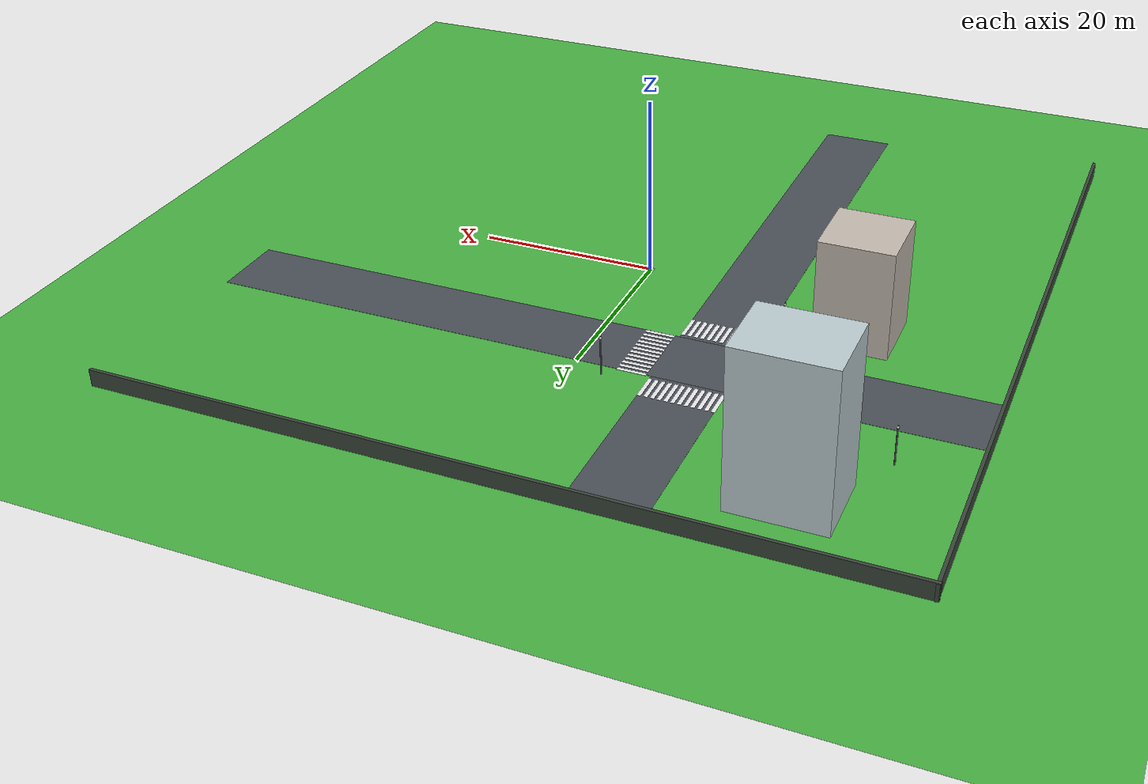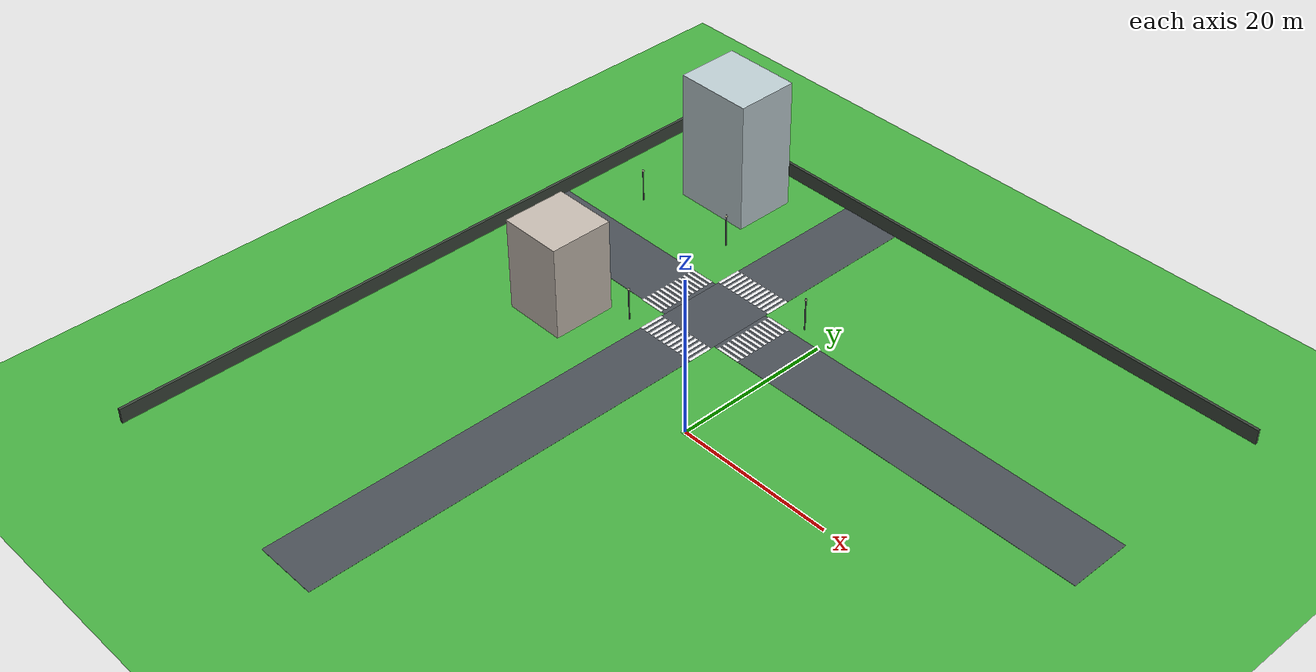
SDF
<sdf version="1.10">
 <world name="city_second">
  <model name="ground_plane">
   <static>true</static>
   <link name="link">
    <collision name="collision">
     <geometry><plane><normal>0 0 1</normal><size>300 300</size></plane></geometry>
    </collision>
    <visual name="visual">
     <geometry><plane><normal>0 0 1</normal><size>300 300</size></plane></geometry>
     <material>
      <ambient>0.280000001 0.689999998 0.25999999 1</ambient>
      <diffuse>0.280000001 0.689999998 0.25999999 1</diffuse>
      <specular>0.0299999993 0.0299999993 0.0299999993 1</specular>
     </material>
    </visual>
    <inertial>
     <mass>1</mass>
     <inertia><ixx>1</ixx><ixy>0</ixy><ixz>0</ixz><iyy>1</iyy><iyz>0</iyz><izz>1</izz></inertia>
    </inertial>
   </link>
  </model>
  <model name="road_h_2">
   <static>true</static>
   <pose>0 16 0.01 0 0 0</pose>
   <link name="link">
    <collision name="collision"><geometry><box><size>84 8 0.02</size></box></geometry></collision>
    <visual name="visual">
     <geometry><box><size>84 8 0.02</size></box></geometry>
     <material>
      <ambient>0.289999992 0.310000002 0.340000004 1</ambient>
      <diffuse>0.289999992 0.310000002 0.340000004 1</diffuse>
      <specular>0.0299999993 0.0299999993 0.0299999993 1</specular>
     </material>
    </visual>
    <inertial>
     <mass>1</mass>
     <inertia><ixx>1</ixx><ixy>0</ixy><ixz>0</ixz><iyy>1</iyy><iyz>0</iyz><izz>1</izz></inertia>
    </inertial>
   </link>
  </model>
  <model name="house_2_1">
   <static>true</static>
   <pose>-25.100000000000001 4.3999999999999995 6 0 0 0</pose>
   <link name="link">
    <collision name="collision"><geometry><box><size>8 8 12</size></box></geometry></collision>
    <visual name="visual">
     <geometry><box><size>8 8 12</size></box></geometry>
     <material>
      <ambient>0.769999981 0.730000019 0.689999998 1</ambient>
      <diffuse>0.769999981 0.730000019 0.689999998 1</diffuse>
      <specular>0.0299999993 0.0299999993 0.0299999993 1</specular>
     </material>
    </visual>
    <inertial>
     <mass>1</mass>
     <inertia><ixx>1</ixx><ixy>0</ixy><ixz>0</ixz><iyy>1</iyy><iyz>0</iyz><izz>1</izz></inertia>
    </inertial>
   </link>
  </model>
  <model name="robot_spawn_sidewalk_hint">
   <static>true</static>
   <pose>0 0 0.021000000000000001 0 0 0</pose>
   <link name="link">
    <visual name="visual">
     <geometry><box><size>0.80000000000000004 0.80000000000000004 0.0050000000000000001</size></box></geometry>
     <material>
      <ambient>0.550000012 0.860000014 0.569999993 0.649999976</ambient>
      <diffuse>0.550000012 0.860000014 0.569999993 0.649999976</diffuse>
      <specular>0 0 0 1</specular>
     </material>
     <transparency>0.34999999999999998</transparency>
    </visual>
    <inertial>
     <mass>1</mass>
     <inertia><ixx>1</ixx><ixy>0</ixy><ixz>0</ixz><iyy>1</iyy><iyz>0</iyz><izz>1</izz></inertia>
    </inertial>
   </link>
  </model>
  <model name="fence_north">
   <static>true</static>
   <pose>0 42 0.94999999999999996 0 0 0</pose>
   <link name="link">
    <collision name="collision">
     <geometry><box><size>84.5 0.34999999999999998 1.8999999999999999</size></box></geometry>
    </collision>
    <visual name="visual">
     <geometry><box><size>84.5 0.34999999999999998 1.8999999999999999</size></box></geometry>
     <material>
      <ambient>0.230000004 0.270000011 0.230000004 1</ambient>
      <diffuse>0.230000004 0.270000011 0.230000004 1</diffuse>
      <specular>0.0299999993 0.0299999993 0.0299999993 1</specular>
     </material>
    </visual>
    <inertial>
     <mass>1</mass>
     <inertia><ixx>1</ixx><ixy>0</ixy><ixz>0</ixz><iyy>1</iyy><iyz>0</iyz><izz>1</izz></inertia>
    </inertial>
   </link>
  </model>
  <model name="fence_west">
   <static>true</static>
   <pose>-42 0 0.94999999999999996 0 0 0</pose>
   <link name="link">
    <collision name="collision">
     <geometry><box><size>0.34999999999999998 84.5 1.8999999999999999</size></box></geometry>
    </collision>
    <visual name="visual">
     <geometry><box><size>0.34999999999999998 84.5 1.8999999999999999</size></box></geometry>
     <material>
      <ambient>0.230000004 0.270000011 0.230000004 1</ambient>
      <diffuse>0.230000004 0.270000011 0.230000004 1</diffuse>
      <specular>0.0299999993 0.0299999993 0.0299999993 1</specular>
     </material>
    </visual>
    <inertial>
     <mass>1</mass>
     <inertia><ixx>1</ixx><ixy>0</ixy><ixz>0</ixz><iyy>1</iyy><iyz>0</iyz><izz>1</izz></inertia>
    </inertial>
   </link>
  </model>
  <model name="road_v_2_1">
   <static>true</static>
   <pose>-12.095598502569292 -0.16979157245031473 0.0099999997764825821 0 0 0</pose>
   <link name="link">
    <collision name="collision"><geometry><box><size>8 84 0.02</size></box></geometry></collision>
    <visual name="visual">
     <geometry><box><size>8 84 0.02</size></box></geometry>
     <material>
      <ambient>0.289999992 0.310000002 0.340000004 1</ambient>
      <diffuse>0.289999992 0.310000002 0.340000004 1</diffuse>
      <specular>0.0299999993 0.0299999993 0.0299999993 1</specular>
     </material>
    </visual>
    <inertial>
     <mass>1</mass>
     <inertia><ixx>1</ixx><ixy>0</ixy><ixz>0</ixz><iyy>1</iyy><iyz>0</iyz><izz>1</izz></inertia>
    </inertial>
   </link>
  </model>
  <model name="lamp_1_2">
   <static>true</static>
   <pose>-18.167518288766846 8.4933640451042152 2.2000000476837158 0 0 0</pose>
   <link name="link">
    <collision name="collision">
     <geometry>
      <cylinder><radius>0.080000000000000002</radius><length>4.4000000000000004</length></cylinder>
     </geometry>
    </collision>
    <visual name="pole">
     <geometry>
      <cylinder><radius>0.080000000000000002</radius><length>4.4000000000000004</length></cylinder>
     </geometry>
     <material>
      <ambient>0.349999994 0.360000014 0.379999995 1</ambient>
      <diffuse>0.349999994 0.360000014 0.379999995 1</diffuse>
      <specular>0.0299999993 0.0299999993 0.0299999993 1</specular>
     </material>
    </visual>
    <visual name="lamp_head">
     <pose>0 0 2 0 0 0</pose>
     <geometry><sphere><radius>0.14000000000000001</radius></sphere></geometry>
     <material>
      <ambient>0.959999979 0.939999998 0.779999971 1</ambient>
      <diffuse>0.959999979 0.939999998 0.779999971 1</diffuse>
      <specular>0.0299999993 0.0299999993 0.0299999993 1</specular>
     </material>
    </visual>
    <inertial>
     <mass>1</mass>
     <inertia><ixx>1</ixx><ixy>0</ixy><ixz>0</ixz><iyy>1</iyy><iyz>0</iyz><izz>1</izz></inertia>
    </inertial>
   </link>
  </model>
  <model name="house_3_1_1">
   <static>true</static>
   <pose>-26.744751557689504 33.608565857732309 8.5 0 0 0</pose>
   <link name="link">
    <collision name="collision"><geometry><box><size>10 8 17</size></box></geometry></collision>
    <visual name="visual">
     <geometry><box><size>10 8 17</size></box></geometry>
     <material>
      <ambient>0.74000001 0.800000012 0.819999993 1</ambient>
      <diffuse>0.74000001 0.800000012 0.819999993 1</diffuse>
      <specular>0.0299999993 0.0299999993 0.0299999993 1</specular>
     </material>
    </visual>
    <inertial>
     <mass>1</mass>
     <inertia><ixx>1</ixx><ixy>0</ixy><ixz>0</ixz><iyy>1</iyy><iyz>0</iyz><izz>1</izz></inertia>
    </inertial>
   </link>
  </model>
  <model name="crosswalk_v_2_1_east_5_1">
   <static>true</static>
   <pose>-18.222129930338912 15.970349525965688 0.017000000923871994 0 0 0</pose>
   <link name="stripe_1">
    <collision name="collision">
     <geometry><box><size>3.2000000000000002 0.41999999999999998 0.01</size></box></geometry>
    </collision>
    <visual name="visual">
     <geometry><box><size>3.2000000000000002 0.41999999999999998 0.01</size></box></geometry>
     <material>
      <ambient>0.920000017 0.920000017 0.930000007 1</ambient>
      <diffuse>0.920000017 0.920000017 0.930000007 1</diffuse>
      <specular>0.0299999993 0.0299999993 0.0299999993 1</specular>
     </material>
    </visual>
    <pose>0 -3.8500000000000001 0 0 0 0</pose>
    <inertial>
     <mass>1</mass>
     <inertia><ixx>1</ixx><ixy>0</ixy><ixz>0</ixz><iyy>1</iyy><iyz>0</iyz><izz>1</izz></inertia>
    </inertial>
   </link>
   <link name="stripe_2">
    <collision name="collision">
     <geometry><box><size>3.2000000000000002 0.41999999999999998 0.01</size></box></geometry>
    </collision>
    <visual name="visual">
     <geometry><box><size>3.2000000000000002 0.41999999999999998 0.01</size></box></geometry>
     <material>
      <ambient>0.920000017 0.920000017 0.930000007 1</ambient>
      <diffuse>0.920000017 0.920000017 0.930000007 1</diffuse>
      <specular>0.0299999993 0.0299999993 0.0299999993 1</specular>
     </material>
    </visual>
    <pose>0 -3.1500000000000004 0 0 0 0</pose>
    <inertial>
     <mass>1</mass>
     <inertia><ixx>1</ixx><ixy>0</ixy><ixz>0</ixz><iyy>1</iyy><iyz>0</iyz><izz>1</izz></inertia>
    </inertial>
   </link>
   <link name="stripe_3">
    <collision name="collision">
     <geometry><box><size>3.2000000000000002 0.41999999999999998 0.01</size></box></geometry>
    </collision>
    <visual name="visual">
     <geometry><box><size>3.2000000000000002 0.41999999999999998 0.01</size></box></geometry>
     <material>
      <ambient>0.920000017 0.920000017 0.930000007 1</ambient>
      <diffuse>0.920000017 0.920000017 0.930000007 1</diffuse>
      <specular>0.0299999993 0.0299999993 0.0299999993 1</specular>
     </material>
    </visual>
    <pose>0 -2.4499999999999993 0 0 0 0</pose>
    <inertial>
     <mass>1</mass>
     <inertia><ixx>1</ixx><ixy>0</ixy><ixz>0</ixz><iyy>1</iyy><iyz>0</iyz><izz>1</izz></inertia>
    </inertial>
   </link>
   <link name="stripe_4">
    <collision name="collision">
     <geometry><box><size>3.2000000000000002 0.41999999999999998 0.01</size></box></geometry>
    </collision>
    <visual name="visual">
     <geometry><box><size>3.2000000000000002 0.41999999999999998 0.01</size></box></geometry>
     <material>
      <ambient>0.920000017 0.920000017 0.930000007 1</ambient>
      <diffuse>0.920000017 0.920000017 0.930000007 1</diffuse>
      <specular>0.0299999993 0.0299999993 0.0299999993 1</specular>
     </material>
    </visual>
    <pose>0 -1.75 0 0 0 0</pose>
    <inertial>
     <mass>1</mass>
     <inertia><ixx>1</ixx><ixy>0</ixy><ixz>0</ixz><iyy>1</iyy><iyz>0</iyz><izz>1</izz></inertia>
    </inertial>
   </link>
   <link name="stripe_5">
    <collision name="collision">
     <geometry><box><size>3.2000000000000002 0.41999999999999998 0.01</size></box></geometry>
    </collision>
    <visual name="visual">
     <geometry><box><size>3.2000000000000002 0.41999999999999998 0.01</size></box></geometry>
     <material>
      <ambient>0.920000017 0.920000017 0.930000007 1</ambient>
      <diffuse>0.920000017 0.920000017 0.930000007 1</diffuse>
      <specular>0.0299999993 0.0299999993 0.0299999993 1</specular>
     </material>
    </visual>
    <pose>0 -1.0500000000000007 0 0 0 0</pose>
    <inertial>
     <mass>1</mass>
     <inertia><ixx>1</ixx><ixy>0</ixy><ixz>0</ixz><iyy>1</iyy><iyz>0</iyz><izz>1</izz></inertia>
    </inertial>
   </link>
   <link name="stripe_6">
    <collision name="collision">
     <geometry><box><size>3.2000000000000002 0.41999999999999998 0.01</size></box></geometry>
    </collision>
    <visual name="visual">
     <geometry><box><size>3.2000000000000002 0.41999999999999998 0.01</size></box></geometry>
     <material>
      <ambient>0.920000017 0.920000017 0.930000007 1</ambient>
      <diffuse>0.920000017 0.920000017 0.930000007 1</diffuse>
      <specular>0.0299999993 0.0299999993 0.0299999993 1</specular>
     </material>
    </visual>
    <pose>0 -0.34999999999999964 0 0 0 0</pose>
    <inertial>
     <mass>1</mass>
     <inertia><ixx>1</ixx><ixy>0</ixy><ixz>0</ixz><iyy>1</iyy><iyz>0</iyz><izz>1</izz></inertia>
    </inertial>
   </link>
   <link name="stripe_7">
    <collision name="collision">
     <geometry><box><size>3.2000000000000002 0.41999999999999998 0.01</size></box></geometry>
    </collision>
    <visual name="visual">
     <geometry><box><size>3.2000000000000002 0.41999999999999998 0.01</size></box></geometry>
     <material>
      <ambient>0.920000017 0.920000017 0.930000007 1</ambient>
      <diffuse>0.920000017 0.920000017 0.930000007 1</diffuse>
      <specular>0.0299999993 0.0299999993 0.0299999993 1</specular>
     </material>
    </visual>
    <pose>0 0.35000000000000142 0 0 0 0</pose>
    <inertial>
     <mass>1</mass>
     <inertia><ixx>1</ixx><ixy>0</ixy><ixz>0</ixz><iyy>1</iyy><iyz>0</iyz><izz>1</izz></inertia>
    </inertial>
   </link>
   <link name="stripe_8">
    <collision name="collision">
     <geometry><box><size>3.2000000000000002 0.41999999999999998 0.01</size></box></geometry>
    </collision>
    <visual name="visual">
     <geometry><box><size>3.2000000000000002 0.41999999999999998 0.01</size></box></geometry>
     <material>
      <ambient>0.920000017 0.920000017 0.930000007 1</ambient>
      <diffuse>0.920000017 0.920000017 0.930000007 1</diffuse>
      <specular>0.0299999993 0.0299999993 0.0299999993 1</specular>
     </material>
    </visual>
    <pose>0 1.0500000000000007 0 0 0 0</pose>
    <inertial>
     <mass>1</mass>
     <inertia><ixx>1</ixx><ixy>0</ixy><ixz>0</ixz><iyy>1</iyy><iyz>0</iyz><izz>1</izz></inertia>
    </inertial>
   </link>
   <link name="stripe_9">
    <collision name="collision">
     <geometry><box><size>3.2000000000000002 0.41999999999999998 0.01</size></box></geometry>
    </collision>
    <visual name="visual">
     <geometry><box><size>3.2000000000000002 0.41999999999999998 0.01</size></box></geometry>
     <material>
      <ambient>0.920000017 0.920000017 0.930000007 1</ambient>
      <diffuse>0.920000017 0.920000017 0.930000007 1</diffuse>
      <specular>0.0299999993 0.0299999993 0.0299999993 1</specular>
     </material>
    </visual>
    <pose>0 1.75 0 0 0 0</pose>
    <inertial>
     <mass>1</mass>
     <inertia><ixx>1</ixx><ixy>0</ixy><ixz>0</ixz><iyy>1</iyy><iyz>0</iyz><izz>1</izz></inertia>
    </inertial>
   </link>
   <link name="stripe_10">
    <collision name="collision">
     <geometry><box><size>3.2000000000000002 0.41999999999999998 0.01</size></box></geometry>
    </collision>
    <visual name="visual">
     <geometry><box><size>3.2000000000000002 0.41999999999999998 0.01</size></box></geometry>
     <material>
      <ambient>0.920000017 0.920000017 0.930000007 1</ambient>
      <diffuse>0.920000017 0.920000017 0.930000007 1</diffuse>
      <specular>0.0299999993 0.0299999993 0.0299999993 1</specular>
     </material>
    </visual>
    <pose>0 2.4499999999999993 0 0 0 0</pose>
    <inertial>
     <mass>1</mass>
     <inertia><ixx>1</ixx><ixy>0</ixy><ixz>0</ixz><iyy>1</iyy><iyz>0</iyz><izz>1</izz></inertia>
    </inertial>
   </link>
   <link name="stripe_11">
    <collision name="collision">
     <geometry><box><size>3.2000000000000002 0.41999999999999998 0.01</size></box></geometry>
    </collision>
    <visual name="visual">
     <geometry><box><size>3.2000000000000002 0.41999999999999998 0.01</size></box></geometry>
     <material>
      <ambient>0.920000017 0.920000017 0.930000007 1</ambient>
      <diffuse>0.920000017 0.920000017 0.930000007 1</diffuse>
      <specular>0.0299999993 0.0299999993 0.0299999993 1</specular>
     </material>
    </visual>
    <pose>0 3.1499999999999986 0 0 0 0</pose>
    <inertial>
     <mass>1</mass>
     <inertia><ixx>1</ixx><ixy>0</ixy><ixz>0</ixz><iyy>1</iyy><iyz>0</iyz><izz>1</izz></inertia>
    </inertial>
   </link>
   <link name="stripe_12">
    <collision name="collision">
     <geometry><box><size>3.2000000000000002 0.41999999999999998 0.01</size></box></geometry>
    </collision>
    <visual name="visual">
     <geometry><box><size>3.2000000000000002 0.41999999999999998 0.01</size></box></geometry>
     <material>
      <ambient>0.920000017 0.920000017 0.930000007 1</ambient>
      <diffuse>0.920000017 0.920000017 0.930000007 1</diffuse>
      <specular>0.0299999993 0.0299999993 0.0299999993 1</specular>
     </material>
    </visual>
    <pose>0 3.8500000000000014 0 0 0 0</pose>
    <inertial>
     <mass>1</mass>
     <inertia><ixx>1</ixx><ixy>0</ixy><ixz>0</ixz><iyy>1</iyy><iyz>0</iyz><izz>1</izz></inertia>
    </inertial>
   </link>
  </model>
  <model name="crosswalk_v_2_1_east_5_2">
   <static>true</static>
   <pose>-6.0116002448655337 16.07211418495984 0.017000000923871994 0 0 0</pose>
   <link name="stripe_1">
    <collision name="collision">
     <geometry><box><size>3.2000000000000002 0.41999999999999998 0.01</size></box></geometry>
    </collision>
    <visual name="visual">
     <geometry><box><size>3.2000000000000002 0.41999999999999998 0.01</size></box></geometry>
     <material>
      <ambient>0.920000017 0.920000017 0.930000007 1</ambient>
      <diffuse>0.920000017 0.920000017 0.930000007 1</diffuse>
      <specular>0.0299999993 0.0299999993 0.0299999993 1</specular>
     </material>
    </visual>
    <pose>0 -3.8500000000000001 0 0 0 0</pose>
    <inertial>
     <mass>1</mass>
     <inertia><ixx>1</ixx><ixy>0</ixy><ixz>0</ixz><iyy>1</iyy><iyz>0</iyz><izz>1</izz></inertia>
    </inertial>
   </link>
   <link name="stripe_2">
    <collision name="collision">
     <geometry><box><size>3.2000000000000002 0.41999999999999998 0.01</size></box></geometry>
    </collision>
    <visual name="visual">
     <geometry><box><size>3.2000000000000002 0.41999999999999998 0.01</size></box></geometry>
     <material>
      <ambient>0.920000017 0.920000017 0.930000007 1</ambient>
      <diffuse>0.920000017 0.920000017 0.930000007 1</diffuse>
      <specular>0.0299999993 0.0299999993 0.0299999993 1</specular>
     </material>
    </visual>
    <pose>0 -3.1500000000000004 0 0 0 0</pose>
    <inertial>
     <mass>1</mass>
     <inertia><ixx>1</ixx><ixy>0</ixy><ixz>0</ixz><iyy>1</iyy><iyz>0</iyz><izz>1</izz></inertia>
    </inertial>
   </link>
   <link name="stripe_3">
    <collision name="collision">
     <geometry><box><size>3.2000000000000002 0.41999999999999998 0.01</size></box></geometry>
    </collision>
    <visual name="visual">
     <geometry><box><size>3.2000000000000002 0.41999999999999998 0.01</size></box></geometry>
     <material>
      <ambient>0.920000017 0.920000017 0.930000007 1</ambient>
      <diffuse>0.920000017 0.920000017 0.930000007 1</diffuse>
      <specular>0.0299999993 0.0299999993 0.0299999993 1</specular>
     </material>
    </visual>
    <pose>0 -2.4499999999999993 0 0 0 0</pose>
    <inertial>
     <mass>1</mass>
     <inertia><ixx>1</ixx><ixy>0</ixy><ixz>0</ixz><iyy>1</iyy><iyz>0</iyz><izz>1</izz></inertia>
    </inertial>
   </link>
   <link name="stripe_4">
    <collision name="collision">
     <geometry><box><size>3.2000000000000002 0.41999999999999998 0.01</size></box></geometry>
    </collision>
    <visual name="visual">
     <geometry><box><size>3.2000000000000002 0.41999999999999998 0.01</size></box></geometry>
     <material>
      <ambient>0.920000017 0.920000017 0.930000007 1</ambient>
      <diffuse>0.920000017 0.920000017 0.930000007 1</diffuse>
      <specular>0.0299999993 0.0299999993 0.0299999993 1</specular>
     </material>
    </visual>
    <pose>0 -1.75 0 0 0 0</pose>
    <inertial>
     <mass>1</mass>
     <inertia><ixx>1</ixx><ixy>0</ixy><ixz>0</ixz><iyy>1</iyy><iyz>0</iyz><izz>1</izz></inertia>
    </inertial>
   </link>
   <link name="stripe_5">
    <collision name="collision">
     <geometry><box><size>3.2000000000000002 0.41999999999999998 0.01</size></box></geometry>
    </collision>
    <visual name="visual">
     <geometry><box><size>3.2000000000000002 0.41999999999999998 0.01</size></box></geometry>
     <material>
      <ambient>0.920000017 0.920000017 0.930000007 1</ambient>
      <diffuse>0.920000017 0.920000017 0.930000007 1</diffuse>
      <specular>0.0299999993 0.0299999993 0.0299999993 1</specular>
     </material>
    </visual>
    <pose>0 -1.0500000000000007 0 0 0 0</pose>
    <inertial>
     <mass>1</mass>
     <inertia><ixx>1</ixx><ixy>0</ixy><ixz>0</ixz><iyy>1</iyy><iyz>0</iyz><izz>1</izz></inertia>
    </inertial>
   </link>
   <link name="stripe_6">
    <collision name="collision">
     <geometry><box><size>3.2000000000000002 0.41999999999999998 0.01</size></box></geometry>
    </collision>
    <visual name="visual">
     <geometry><box><size>3.2000000000000002 0.41999999999999998 0.01</size></box></geometry>
     <material>
      <ambient>0.920000017 0.920000017 0.930000007 1</ambient>
      <diffuse>0.920000017 0.920000017 0.930000007 1</diffuse>
      <specular>0.0299999993 0.0299999993 0.0299999993 1</specular>
     </material>
    </visual>
    <pose>0 -0.34999999999999964 0 0 0 0</pose>
    <inertial>
     <mass>1</mass>
     <inertia><ixx>1</ixx><ixy>0</ixy><ixz>0</ixz><iyy>1</iyy><iyz>0</iyz><izz>1</izz></inertia>
    </inertial>
   </link>
   <link name="stripe_7">
    <collision name="collision">
     <geometry><box><size>3.2000000000000002 0.41999999999999998 0.01</size></box></geometry>
    </collision>
    <visual name="visual">
     <geometry><box><size>3.2000000000000002 0.41999999999999998 0.01</size></box></geometry>
     <material>
      <ambient>0.920000017 0.920000017 0.930000007 1</ambient>
      <diffuse>0.920000017 0.920000017 0.930000007 1</diffuse>
      <specular>0.0299999993 0.0299999993 0.0299999993 1</specular>
     </material>
    </visual>
    <pose>0 0.35000000000000142 0 0 0 0</pose>
    <inertial>
     <mass>1</mass>
     <inertia><ixx>1</ixx><ixy>0</ixy><ixz>0</ixz><iyy>1</iyy><iyz>0</iyz><izz>1</izz></inertia>
    </inertial>
   </link>
   <link name="stripe_8">
    <collision name="collision">
     <geometry><box><size>3.2000000000000002 0.41999999999999998 0.01</size></box></geometry>
    </collision>
    <visual name="visual">
     <geometry><box><size>3.2000000000000002 0.41999999999999998 0.01</size></box></geometry>
     <material>
      <ambient>0.920000017 0.920000017 0.930000007 1</ambient>
      <diffuse>0.920000017 0.920000017 0.930000007 1</diffuse>
      <specular>0.0299999993 0.0299999993 0.0299999993 1</specular>
     </material>
    </visual>
    <pose>0 1.0500000000000007 0 0 0 0</pose>
    <inertial>
     <mass>1</mass>
     <inertia><ixx>1</ixx><ixy>0</ixy><ixz>0</ixz><iyy>1</iyy><iyz>0</iyz><izz>1</izz></inertia>
    </inertial>
   </link>
   <link name="stripe_9">
    <collision name="collision">
     <geometry><box><size>3.2000000000000002 0.41999999999999998 0.01</size></box></geometry>
    </collision>
    <visual name="visual">
     <geometry><box><size>3.2000000000000002 0.41999999999999998 0.01</size></box></geometry>
     <material>
      <ambient>0.920000017 0.920000017 0.930000007 1</ambient>
      <diffuse>0.920000017 0.920000017 0.930000007 1</diffuse>
      <specular>0.0299999993 0.0299999993 0.0299999993 1</specular>
     </material>
    </visual>
    <pose>0 1.75 0 0 0 0</pose>
    <inertial>
     <mass>1</mass>
     <inertia><ixx>1</ixx><ixy>0</ixy><ixz>0</ixz><iyy>1</iyy><iyz>0</iyz><izz>1</izz></inertia>
    </inertial>
   </link>
   <link name="stripe_10">
    <collision name="collision">
     <geometry><box><size>3.2000000000000002 0.41999999999999998 0.01</size></box></geometry>
    </collision>
    <visual name="visual">
     <geometry><box><size>3.2000000000000002 0.41999999999999998 0.01</size></box></geometry>
     <material>
      <ambient>0.920000017 0.920000017 0.930000007 1</ambient>
      <diffuse>0.920000017 0.920000017 0.930000007 1</diffuse>
      <specular>0.0299999993 0.0299999993 0.0299999993 1</specular>
     </material>
    </visual>
    <pose>0 2.4499999999999993 0 0 0 0</pose>
    <inertial>
     <mass>1</mass>
     <inertia><ixx>1</ixx><ixy>0</ixy><ixz>0</ixz><iyy>1</iyy><iyz>0</iyz><izz>1</izz></inertia>
    </inertial>
   </link>
   <link name="stripe_11">
    <collision name="collision">
     <geometry><box><size>3.2000000000000002 0.41999999999999998 0.01</size></box></geometry>
    </collision>
    <visual name="visual">
     <geometry><box><size>3.2000000000000002 0.41999999999999998 0.01</size></box></geometry>
     <material>
      <ambient>0.920000017 0.920000017 0.930000007 1</ambient>
      <diffuse>0.920000017 0.920000017 0.930000007 1</diffuse>
      <specular>0.0299999993 0.0299999993 0.0299999993 1</specular>
     </material>
    </visual>
    <pose>0 3.1499999999999986 0 0 0 0</pose>
    <inertial>
     <mass>1</mass>
     <inertia><ixx>1</ixx><ixy>0</ixy><ixz>0</ixz><iyy>1</iyy><iyz>0</iyz><izz>1</izz></inertia>
    </inertial>
   </link>
   <link name="stripe_12">
    <collision name="collision">
     <geometry><box><size>3.2000000000000002 0.41999999999999998 0.01</size></box></geometry>
    </collision>
    <visual name="visual">
     <geometry><box><size>3.2000000000000002 0.41999999999999998 0.01</size></box></geometry>
     <material>
      <ambient>0.920000017 0.920000017 0.930000007 1</ambient>
      <diffuse>0.920000017 0.920000017 0.930000007 1</diffuse>
      <specular>0.0299999993 0.0299999993 0.0299999993 1</specular>
     </material>
    </visual>
    <pose>0 3.8500000000000014 0 0 0 0</pose>
    <inertial>
     <mass>1</mass>
     <inertia><ixx>1</ixx><ixy>0</ixy><ixz>0</ixz><iyy>1</iyy><iyz>0</iyz><izz>1</izz></inertia>
    </inertial>
   </link>
  </model>
  <model name="crosswalk_h_1_1_south_7_5">
   <static>true</static>
   <pose>-12.107380503278115 9.9455399096106394 0.017000000923871994 0 0 0</pose>
   <link name="stripe_1">
    <collision name="collision">
     <geometry><box><size>0.41999999999999998 3.2000000000000002 0.01</size></box></geometry>
    </collision>
    <visual name="visual">
     <geometry><box><size>0.41999999999999998 3.2000000000000002 0.01</size></box></geometry>
     <material>
      <ambient>0.920000017 0.920000017 0.930000007 1</ambient>
      <diffuse>0.920000017 0.920000017 0.930000007 1</diffuse>
      <specular>0.0299999993 0.0299999993 0.0299999993 1</specular>
     </material>
    </visual>
    <pose>-3.8500000000000001 0 0 0 0 0</pose>
    <inertial>
     <mass>1</mass>
     <inertia><ixx>1</ixx><ixy>0</ixy><ixz>0</ixz><iyy>1</iyy><iyz>0</iyz><izz>1</izz></inertia>
    </inertial>
   </link>
   <link name="stripe_2">
    <collision name="collision">
     <geometry><box><size>0.41999999999999998 3.2000000000000002 0.01</size></box></geometry>
    </collision>
    <visual name="visual">
     <geometry><box><size>0.41999999999999998 3.2000000000000002 0.01</size></box></geometry>
     <material>
      <ambient>0.920000017 0.920000017 0.930000007 1</ambient>
      <diffuse>0.920000017 0.920000017 0.930000007 1</diffuse>
      <specular>0.0299999993 0.0299999993 0.0299999993 1</specular>
     </material>
    </visual>
    <pose>-3.1500000000000004 0 0 0 0 0</pose>
    <inertial>
     <mass>1</mass>
     <inertia><ixx>1</ixx><ixy>0</ixy><ixz>0</ixz><iyy>1</iyy><iyz>0</iyz><izz>1</izz></inertia>
    </inertial>
   </link>
   <link name="stripe_3">
    <collision name="collision">
     <geometry><box><size>0.41999999999999998 3.2000000000000002 0.01</size></box></geometry>
    </collision>
    <visual name="visual">
     <geometry><box><size>0.41999999999999998 3.2000000000000002 0.01</size></box></geometry>
     <material>
      <ambient>0.920000017 0.920000017 0.930000007 1</ambient>
      <diffuse>0.920000017 0.920000017 0.930000007 1</diffuse>
      <specular>0.0299999993 0.0299999993 0.0299999993 1</specular>
     </material>
    </visual>
    <pose>-2.4499999999999993 0 0 0 0 0</pose>
    <inertial>
     <mass>1</mass>
     <inertia><ixx>1</ixx><ixy>0</ixy><ixz>0</ixz><iyy>1</iyy><iyz>0</iyz><izz>1</izz></inertia>
    </inertial>
   </link>
   <link name="stripe_4">
    <collision name="collision">
     <geometry><box><size>0.41999999999999998 3.2000000000000002 0.01</size></box></geometry>
    </collision>
    <visual name="visual">
     <geometry><box><size>0.41999999999999998 3.2000000000000002 0.01</size></box></geometry>
     <material>
      <ambient>0.920000017 0.920000017 0.930000007 1</ambient>
      <diffuse>0.920000017 0.920000017 0.930000007 1</diffuse>
      <specular>0.0299999993 0.0299999993 0.0299999993 1</specular>
     </material>
    </visual>
    <pose>-1.75 0 0 0 0 0</pose>
    <inertial>
     <mass>1</mass>
     <inertia><ixx>1</ixx><ixy>0</ixy><ixz>0</ixz><iyy>1</iyy><iyz>0</iyz><izz>1</izz></inertia>
    </inertial>
   </link>
   <link name="stripe_5">
    <collision name="collision">
     <geometry><box><size>0.41999999999999998 3.2000000000000002 0.01</size></box></geometry>
    </collision>
    <visual name="visual">
     <geometry><box><size>0.41999999999999998 3.2000000000000002 0.01</size></box></geometry>
     <material>
      <ambient>0.920000017 0.920000017 0.930000007 1</ambient>
      <diffuse>0.920000017 0.920000017 0.930000007 1</diffuse>
      <specular>0.0299999993 0.0299999993 0.0299999993 1</specular>
     </material>
    </visual>
    <pose>-1.0500000000000007 0 0 0 0 0</pose>
    <inertial>
     <mass>1</mass>
     <inertia><ixx>1</ixx><ixy>0</ixy><ixz>0</ixz><iyy>1</iyy><iyz>0</iyz><izz>1</izz></inertia>
    </inertial>
   </link>
   <link name="stripe_6">
    <collision name="collision">
     <geometry><box><size>0.41999999999999998 3.2000000000000002 0.01</size></box></geometry>
    </collision>
    <visual name="visual">
     <geometry><box><size>0.41999999999999998 3.2000000000000002 0.01</size></box></geometry>
     <material>
      <ambient>0.920000017 0.920000017 0.930000007 1</ambient>
      <diffuse>0.920000017 0.920000017 0.930000007 1</diffuse>
      <specular>0.0299999993 0.0299999993 0.0299999993 1</specular>
     </material>
    </visual>
    <pose>-0.34999999999999964 0 0 0 0 0</pose>
    <inertial>
     <mass>1</mass>
     <inertia><ixx>1</ixx><ixy>0</ixy><ixz>0</ixz><iyy>1</iyy><iyz>0</iyz><izz>1</izz></inertia>
    </inertial>
   </link>
   <link name="stripe_7">
    <collision name="collision">
     <geometry><box><size>0.41999999999999998 3.2000000000000002 0.01</size></box></geometry>
    </collision>
    <visual name="visual">
     <geometry><box><size>0.41999999999999998 3.2000000000000002 0.01</size></box></geometry>
     <material>
      <ambient>0.920000017 0.920000017 0.930000007 1</ambient>
      <diffuse>0.920000017 0.920000017 0.930000007 1</diffuse>
      <specular>0.0299999993 0.0299999993 0.0299999993 1</specular>
     </material>
    </visual>
    <pose>0.35000000000000142 0 0 0 0 0</pose>
    <inertial>
     <mass>1</mass>
     <inertia><ixx>1</ixx><ixy>0</ixy><ixz>0</ixz><iyy>1</iyy><iyz>0</iyz><izz>1</izz></inertia>
    </inertial>
   </link>
   <link name="stripe_8">
    <collision name="collision">
     <geometry><box><size>0.41999999999999998 3.2000000000000002 0.01</size></box></geometry>
    </collision>
    <visual name="visual">
     <geometry><box><size>0.41999999999999998 3.2000000000000002 0.01</size></box></geometry>
     <material>
      <ambient>0.920000017 0.920000017 0.930000007 1</ambient>
      <diffuse>0.920000017 0.920000017 0.930000007 1</diffuse>
      <specular>0.0299999993 0.0299999993 0.0299999993 1</specular>
     </material>
    </visual>
    <pose>1.0500000000000007 0 0 0 0 0</pose>
    <inertial>
     <mass>1</mass>
     <inertia><ixx>1</ixx><ixy>0</ixy><ixz>0</ixz><iyy>1</iyy><iyz>0</iyz><izz>1</izz></inertia>
    </inertial>
   </link>
   <link name="stripe_9">
    <collision name="collision">
     <geometry><box><size>0.41999999999999998 3.2000000000000002 0.01</size></box></geometry>
    </collision>
    <visual name="visual">
     <geometry><box><size>0.41999999999999998 3.2000000000000002 0.01</size></box></geometry>
     <material>
      <ambient>0.920000017 0.920000017 0.930000007 1</ambient>
      <diffuse>0.920000017 0.920000017 0.930000007 1</diffuse>
      <specular>0.0299999993 0.0299999993 0.0299999993 1</specular>
     </material>
    </visual>
    <pose>1.75 0 0 0 0 0</pose>
    <inertial>
     <mass>1</mass>
     <inertia><ixx>1</ixx><ixy>0</ixy><ixz>0</ixz><iyy>1</iyy><iyz>0</iyz><izz>1</izz></inertia>
    </inertial>
   </link>
   <link name="stripe_10">
    <collision name="collision">
     <geometry><box><size>0.41999999999999998 3.2000000000000002 0.01</size></box></geometry>
    </collision>
    <visual name="visual">
     <geometry><box><size>0.41999999999999998 3.2000000000000002 0.01</size></box></geometry>
     <material>
      <ambient>0.920000017 0.920000017 0.930000007 1</ambient>
      <diffuse>0.920000017 0.920000017 0.930000007 1</diffuse>
      <specular>0.0299999993 0.0299999993 0.0299999993 1</specular>
     </material>
    </visual>
    <pose>2.4499999999999993 0 0 0 0 0</pose>
    <inertial>
     <mass>1</mass>
     <inertia><ixx>1</ixx><ixy>0</ixy><ixz>0</ixz><iyy>1</iyy><iyz>0</iyz><izz>1</izz></inertia>
    </inertial>
   </link>
   <link name="stripe_11">
    <collision name="collision">
     <geometry><box><size>0.41999999999999998 3.2000000000000002 0.01</size></box></geometry>
    </collision>
    <visual name="visual">
     <geometry><box><size>0.41999999999999998 3.2000000000000002 0.01</size></box></geometry>
     <material>
      <ambient>0.920000017 0.920000017 0.930000007 1</ambient>
      <diffuse>0.920000017 0.920000017 0.930000007 1</diffuse>
      <specular>0.0299999993 0.0299999993 0.0299999993 1</specular>
     </material>
    </visual>
    <pose>3.1499999999999986 0 0 0 0 0</pose>
    <inertial>
     <mass>1</mass>
     <inertia><ixx>1</ixx><ixy>0</ixy><ixz>0</ixz><iyy>1</iyy><iyz>0</iyz><izz>1</izz></inertia>
    </inertial>
   </link>
   <link name="stripe_12">
    <collision name="collision">
     <geometry><box><size>0.41999999999999998 3.2000000000000002 0.01</size></box></geometry>
    </collision>
    <visual name="visual">
     <geometry><box><size>0.41999999999999998 3.2000000000000002 0.01</size></box></geometry>
     <material>
      <ambient>0.920000017 0.920000017 0.930000007 1</ambient>
      <diffuse>0.920000017 0.920000017 0.930000007 1</diffuse>
      <specular>0.0299999993 0.0299999993 0.0299999993 1</specular>
     </material>
    </visual>
    <pose>3.8500000000000014 0 0 0 0 0</pose>
    <inertial>
     <mass>1</mass>
     <inertia><ixx>1</ixx><ixy>0</ixy><ixz>0</ixz><iyy>1</iyy><iyz>0</iyz><izz>1</izz></inertia>
    </inertial>
   </link>
  </model>
  <model name="crosswalk_h_1_1_south_7_6">
   <static>true</static>
   <pose>-12.114482990771034 22.032193153249942 0.017000000923871994 0 0 0</pose>
   <link name="stripe_1">
    <collision name="collision">
     <geometry><box><size>0.41999999999999998 3.2000000000000002 0.01</size></box></geometry>
    </collision>
    <visual name="visual">
     <geometry><box><size>0.41999999999999998 3.2000000000000002 0.01</size></box></geometry>
     <material>
      <ambient>0.920000017 0.920000017 0.930000007 1</ambient>
      <diffuse>0.920000017 0.920000017 0.930000007 1</diffuse>
      <specular>0.0299999993 0.0299999993 0.0299999993 1</specular>
     </material>
    </visual>
    <pose>-3.8500000000000001 0 0 0 0 0</pose>
    <inertial>
     <mass>1</mass>
     <inertia><ixx>1</ixx><ixy>0</ixy><ixz>0</ixz><iyy>1</iyy><iyz>0</iyz><izz>1</izz></inertia>
    </inertial>
   </link>
   <link name="stripe_2">
    <collision name="collision">
     <geometry><box><size>0.41999999999999998 3.2000000000000002 0.01</size></box></geometry>
    </collision>
    <visual name="visual">
     <geometry><box><size>0.41999999999999998 3.2000000000000002 0.01</size></box></geometry>
     <material>
      <ambient>0.920000017 0.920000017 0.930000007 1</ambient>
      <diffuse>0.920000017 0.920000017 0.930000007 1</diffuse>
      <specular>0.0299999993 0.0299999993 0.0299999993 1</specular>
     </material>
    </visual>
    <pose>-3.1500000000000004 0 0 0 0 0</pose>
    <inertial>
     <mass>1</mass>
     <inertia><ixx>1</ixx><ixy>0</ixy><ixz>0</ixz><iyy>1</iyy><iyz>0</iyz><izz>1</izz></inertia>
    </inertial>
   </link>
   <link name="stripe_3">
    <collision name="collision">
     <geometry><box><size>0.41999999999999998 3.2000000000000002 0.01</size></box></geometry>
    </collision>
    <visual name="visual">
     <geometry><box><size>0.41999999999999998 3.2000000000000002 0.01</size></box></geometry>
     <material>
      <ambient>0.920000017 0.920000017 0.930000007 1</ambient>
      <diffuse>0.920000017 0.920000017 0.930000007 1</diffuse>
      <specular>0.0299999993 0.0299999993 0.0299999993 1</specular>
     </material>
    </visual>
    <pose>-2.4499999999999993 0 0 0 0 0</pose>
    <inertial>
     <mass>1</mass>
     <inertia><ixx>1</ixx><ixy>0</ixy><ixz>0</ixz><iyy>1</iyy><iyz>0</iyz><izz>1</izz></inertia>
    </inertial>
   </link>
   <link name="stripe_4">
    <collision name="collision">
     <geometry><box><size>0.41999999999999998 3.2000000000000002 0.01</size></box></geometry>
    </collision>
    <visual name="visual">
     <geometry><box><size>0.41999999999999998 3.2000000000000002 0.01</size></box></geometry>
     <material>
      <ambient>0.920000017 0.920000017 0.930000007 1</ambient>
      <diffuse>0.920000017 0.920000017 0.930000007 1</diffuse>
      <specular>0.0299999993 0.0299999993 0.0299999993 1</specular>
     </material>
    </visual>
    <pose>-1.75 0 0 0 0 0</pose>
    <inertial>
     <mass>1</mass>
     <inertia><ixx>1</ixx><ixy>0</ixy><ixz>0</ixz><iyy>1</iyy><iyz>0</iyz><izz>1</izz></inertia>
    </inertial>
   </link>
   <link name="stripe_5">
    <collision name="collision">
     <geometry><box><size>0.41999999999999998 3.2000000000000002 0.01</size></box></geometry>
    </collision>
    <visual name="visual">
     <geometry><box><size>0.41999999999999998 3.2000000000000002 0.01</size></box></geometry>
     <material>
      <ambient>0.920000017 0.920000017 0.930000007 1</ambient>
      <diffuse>0.920000017 0.920000017 0.930000007 1</diffuse>
      <specular>0.0299999993 0.0299999993 0.0299999993 1</specular>
     </material>
    </visual>
    <pose>-1.0500000000000007 0 0 0 0 0</pose>
    <inertial>
     <mass>1</mass>
     <inertia><ixx>1</ixx><ixy>0</ixy><ixz>0</ixz><iyy>1</iyy><iyz>0</iyz><izz>1</izz></inertia>
    </inertial>
   </link>
   <link name="stripe_6">
    <collision name="collision">
     <geometry><box><size>0.41999999999999998 3.2000000000000002 0.01</size></box></geometry>
    </collision>
    <visual name="visual">
     <geometry><box><size>0.41999999999999998 3.2000000000000002 0.01</size></box></geometry>
     <material>
      <ambient>0.920000017 0.920000017 0.930000007 1</ambient>
      <diffuse>0.920000017 0.920000017 0.930000007 1</diffuse>
      <specular>0.0299999993 0.0299999993 0.0299999993 1</specular>
     </material>
    </visual>
    <pose>-0.34999999999999964 0 0 0 0 0</pose>
    <inertial>
     <mass>1</mass>
     <inertia><ixx>1</ixx><ixy>0</ixy><ixz>0</ixz><iyy>1</iyy><iyz>0</iyz><izz>1</izz></inertia>
    </inertial>
   </link>
   <link name="stripe_7">
    <collision name="collision">
     <geometry><box><size>0.41999999999999998 3.2000000000000002 0.01</size></box></geometry>
    </collision>
    <visual name="visual">
     <geometry><box><size>0.41999999999999998 3.2000000000000002 0.01</size></box></geometry>
     <material>
      <ambient>0.920000017 0.920000017 0.930000007 1</ambient>
      <diffuse>0.920000017 0.920000017 0.930000007 1</diffuse>
      <specular>0.0299999993 0.0299999993 0.0299999993 1</specular>
     </material>
    </visual>
    <pose>0.35000000000000142 0 0 0 0 0</pose>
    <inertial>
     <mass>1</mass>
     <inertia><ixx>1</ixx><ixy>0</ixy><ixz>0</ixz><iyy>1</iyy><iyz>0</iyz><izz>1</izz></inertia>
    </inertial>
   </link>
   <link name="stripe_8">
    <collision name="collision">
     <geometry><box><size>0.41999999999999998 3.2000000000000002 0.01</size></box></geometry>
    </collision>
    <visual name="visual">
     <geometry><box><size>0.41999999999999998 3.2000000000000002 0.01</size></box></geometry>
     <material>
      <ambient>0.920000017 0.920000017 0.930000007 1</ambient>
      <diffuse>0.920000017 0.920000017 0.930000007 1</diffuse>
      <specular>0.0299999993 0.0299999993 0.0299999993 1</specular>
     </material>
    </visual>
    <pose>1.0500000000000007 0 0 0 0 0</pose>
    <inertial>
     <mass>1</mass>
     <inertia><ixx>1</ixx><ixy>0</ixy><ixz>0</ixz><iyy>1</iyy><iyz>0</iyz><izz>1</izz></inertia>
    </inertial>
   </link>
   <link name="stripe_9">
    <collision name="collision">
     <geometry><box><size>0.41999999999999998 3.2000000000000002 0.01</size></box></geometry>
    </collision>
    <visual name="visual">
     <geometry><box><size>0.41999999999999998 3.2000000000000002 0.01</size></box></geometry>
     <material>
      <ambient>0.920000017 0.920000017 0.930000007 1</ambient>
      <diffuse>0.920000017 0.920000017 0.930000007 1</diffuse>
      <specular>0.0299999993 0.0299999993 0.0299999993 1</specular>
     </material>
    </visual>
    <pose>1.75 0 0 0 0 0</pose>
    <inertial>
     <mass>1</mass>
     <inertia><ixx>1</ixx><ixy>0</ixy><ixz>0</ixz><iyy>1</iyy><iyz>0</iyz><izz>1</izz></inertia>
    </inertial>
   </link>
   <link name="stripe_10">
    <collision name="collision">
     <geometry><box><size>0.41999999999999998 3.2000000000000002 0.01</size></box></geometry>
    </collision>
    <visual name="visual">
     <geometry><box><size>0.41999999999999998 3.2000000000000002 0.01</size></box></geometry>
     <material>
      <ambient>0.920000017 0.920000017 0.930000007 1</ambient>
      <diffuse>0.920000017 0.920000017 0.930000007 1</diffuse>
      <specular>0.0299999993 0.0299999993 0.0299999993 1</specular>
     </material>
    </visual>
    <pose>2.4499999999999993 0 0 0 0 0</pose>
    <inertial>
     <mass>1</mass>
     <inertia><ixx>1</ixx><ixy>0</ixy><ixz>0</ixz><iyy>1</iyy><iyz>0</iyz><izz>1</izz></inertia>
    </inertial>
   </link>
   <link name="stripe_11">
    <collision name="collision">
     <geometry><box><size>0.41999999999999998 3.2000000000000002 0.01</size></box></geometry>
    </collision>
    <visual name="visual">
     <geometry><box><size>0.41999999999999998 3.2000000000000002 0.01</size></box></geometry>
     <material>
      <ambient>0.920000017 0.920000017 0.930000007 1</ambient>
      <diffuse>0.920000017 0.920000017 0.930000007 1</diffuse>
      <specular>0.0299999993 0.0299999993 0.0299999993 1</specular>
     </material>
    </visual>
    <pose>3.1499999999999986 0 0 0 0 0</pose>
    <inertial>
     <mass>1</mass>
     <inertia><ixx>1</ixx><ixy>0</ixy><ixz>0</ixz><iyy>1</iyy><iyz>0</iyz><izz>1</izz></inertia>
    </inertial>
   </link>
   <link name="stripe_12">
    <collision name="collision">
     <geometry><box><size>0.41999999999999998 3.2000000000000002 0.01</size></box></geometry>
    </collision>
    <visual name="visual">
     <geometry><box><size>0.41999999999999998 3.2000000000000002 0.01</size></box></geometry>
     <material>
      <ambient>0.920000017 0.920000017 0.930000007 1</ambient>
      <diffuse>0.920000017 0.920000017 0.930000007 1</diffuse>
      <specular>0.0299999993 0.0299999993 0.0299999993 1</specular>
     </material>
    </visual>
    <pose>3.8500000000000014 0 0 0 0 0</pose>
    <inertial>
     <mass>1</mass>
     <inertia><ixx>1</ixx><ixy>0</ixy><ixz>0</ixz><iyy>1</iyy><iyz>0</iyz><izz>1</izz></inertia>
    </inertial>
   </link>
  </model>
  <model name="lamp_1_2_15">
   <static>true</static>
   <pose>-3.3274398698295045 21.440600120135059 2.2000000476837158 0 0 0</pose>
   <link name="link">
    <collision name="collision">
     <geometry>
      <cylinder><radius>0.080000000000000002</radius><length>4.4000000000000004</length></cylinder>
     </geometry>
    </collision>
    <visual name="pole">
     <geometry>
      <cylinder><radius>0.080000000000000002</radius><length>4.4000000000000004</length></cylinder>
     </geometry>
     <material>
      <ambient>0.349999994 0.360000014 0.379999995 1</ambient>
      <diffuse>0.349999994 0.360000014 0.379999995 1</diffuse>
      <specular>0.0299999993 0.0299999993 0.0299999993 1</specular>
     </material>
    </visual>
    <visual name="lamp_head">
     <pose>0 0 2 0 0 0</pose>
     <geometry><sphere><radius>0.14000000000000001</radius></sphere></geometry>
     <material>
      <ambient>0.959999979 0.939999998 0.779999971 1</ambient>
      <diffuse>0.959999979 0.939999998 0.779999971 1</diffuse>
      <specular>0.0299999993 0.0299999993 0.0299999993 1</specular>
     </material>
    </visual>
    <inertial>
     <mass>1</mass>
     <inertia><ixx>1</ixx><ixy>0</ixy><ixz>0</ixz><iyy>1</iyy><iyz>0</iyz><izz>1</izz></inertia>
    </inertial>
   </link>
  </model>
  <model name="lamp_1_2_16">
   <static>true</static>
   <pose>-34.215232966659073 25.338468700222162 2.2000000476837158 0 0 0</pose>
   <link name="link">
    <collision name="collision">
     <geometry>
      <cylinder><radius>0.080000000000000002</radius><length>4.4000000000000004</length></cylinder>
     </geometry>
    </collision>
    <visual name="pole">
     <geometry>
      <cylinder><radius>0.080000000000000002</radius><length>4.4000000000000004</length></cylinder>
     </geometry>
     <material>
      <ambient>0.349999994 0.360000014 0.379999995 1</ambient>
      <diffuse>0.349999994 0.360000014 0.379999995 1</diffuse>
      <specular>0.0299999993 0.0299999993 0.0299999993 1</specular>
     </material>
    </visual>
    <visual name="lamp_head">
     <pose>0 0 2 0 0 0</pose>
     <geometry><sphere><radius>0.14000000000000001</radius></sphere></geometry>
     <material>
      <ambient>0.959999979 0.939999998 0.779999971 1</ambient>
      <diffuse>0.959999979 0.939999998 0.779999971 1</diffuse>
      <specular>0.0299999993 0.0299999993 0.0299999993 1</specular>
     </material>
    </visual>
    <inertial>
     <mass>1</mass>
     <inertia><ixx>1</ixx><ixy>0</ixy><ixz>0</ixz><iyy>1</iyy><iyz>0</iyz><izz>1</izz></inertia>
    </inertial>
   </link>
  </model>
  <model name="lamp_1_2_17">
   <static>true</static>
   <pose>-20.669610590501257 26.093215602070188 2.2000000476837158 0 0 0</pose>
   <link name="link">
    <collision name="collision">
     <geometry>
      <cylinder><radius>0.080000000000000002</radius><length>4.4000000000000004</length></cylinder>
     </geometry>
    </collision>
    <visual name="pole">
     <geometry>
      <cylinder><radius>0.080000000000000002</radius><length>4.4000000000000004</length></cylinder>
     </geometry>
     <material>
      <ambient>0.349999994 0.360000014 0.379999995 1</ambient>
      <diffuse>0.349999994 0.360000014 0.379999995 1</diffuse>
      <specular>0.0299999993 0.0299999993 0.0299999993 1</specular>
     </material>
    </visual>
    <visual name="lamp_head">
     <pose>0 0 2 0 0 0</pose>
     <geometry><sphere><radius>0.14000000000000001</radius></sphere></geometry>
     <material>
      <ambient>0.959999979 0.939999998 0.779999971 1</ambient>
      <diffuse>0.959999979 0.939999998 0.779999971 1</diffuse>
      <specular>0.0299999993 0.0299999993 0.0299999993 1</specular>
     </material>
    </visual>
    <inertial>
     <mass>1</mass>
     <inertia><ixx>1</ixx><ixy>0</ixy><ixz>0</ixz><iyy>1</iyy><iyz>0</iyz><izz>1</izz></inertia>
    </inertial>
   </link>
  </model>
 </world>
</sdf>
